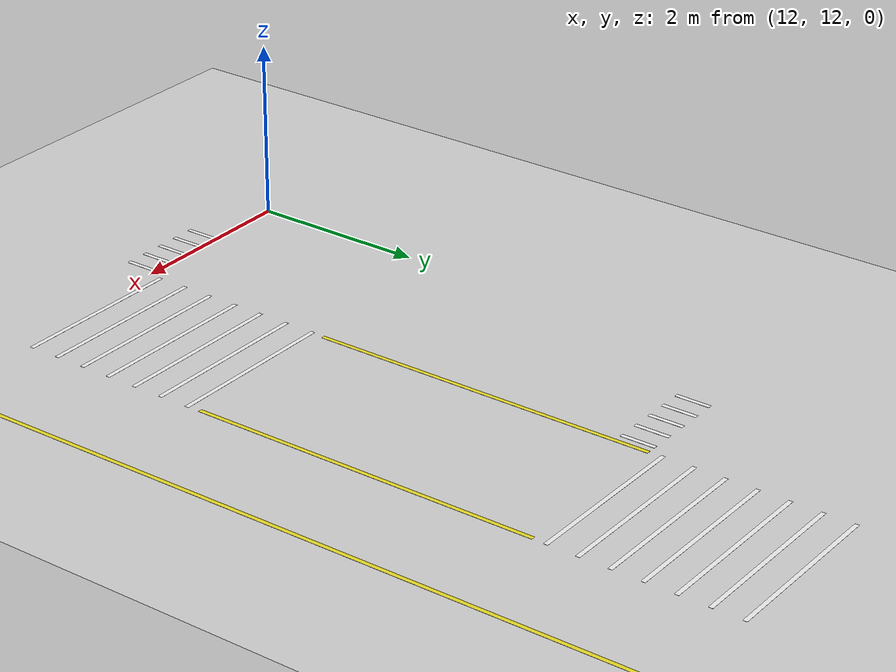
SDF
<sdf version="1.6">
 <world name="default">
  <model name="ground_plane">
   <static>1</static>
   <link name="link">
    <collision name="collision">
     <geometry><plane><normal>0 0 1</normal><size>100 100</size></plane></geometry>
     <surface><friction><ode><mu>100</mu><mu2>50</mu2></ode></friction></surface>
    </collision>
    <visual name="visual">
     <cast_shadows>0</cast_shadows>
     <geometry><plane><normal>0 0 1</normal><size>100 100</size></plane></geometry>
     <material>
      <script><uri>file://media/materials/scripts/gazebo.material</uri><name>Gazebo/Grey</name></script>
     </material>
    </visual>
   </link>
  </model>
  <model name="zebra_crossing_200cmx210cm_0">
   <link name="link_0">
    <inertial>
     <mass>1</mass>
     <inertia>
      <ixx>0.166667</ixx>
      <ixy>0</ixy>
      <ixz>0</ixz>
      <iyy>0.166667</iyy>
      <iyz>0</iyz>
      <izz>0.166667</izz>
     </inertia>
    </inertial>
    <visual name="ModelPreview_1::link_0::visual_6">
     <pose>-1.05 0 0 0 -0 0</pose>
     <geometry><box><size>0.05 2 0.001</size></box></geometry>
     <material>
      <lighting>1</lighting>
      <script><uri>file://media/materials/scripts/gazebo.material</uri><name>Gazebo/White</name></script>
     </material>
    </visual>
    <visual name="ModelPreview_1::link_0::visual_1">
     <pose>0.35 0 0 0 -0 0</pose>
     <geometry><box><size>0.05 2 0.001</size></box></geometry>
     <material>
      <lighting>1</lighting>
      <script><uri>file://media/materials/scripts/gazebo.material</uri><name>Gazebo/White</name></script>
     </material>
    </visual>
    <visual name="ModelPreview_1::link_0::visual_5">
     <pose>-0.7 0 0 0 -0 0</pose>
     <geometry><box><size>0.05 2 0.001</size></box></geometry>
     <material>
      <lighting>1</lighting>
      <script><uri>file://media/materials/scripts/gazebo.material</uri><name>Gazebo/White</name></script>
     </material>
    </visual>
    <visual name="ModelPreview_1::link_0::visual_3">
     <pose>1.05 0 0 0 -0 0</pose>
     <geometry><box><size>0.05 2 0.001</size></box></geometry>
     <material>
      <lighting>1</lighting>
      <script><uri>file://media/materials/scripts/gazebo.material</uri><name>Gazebo/White</name></script>
     </material>
    </visual>
    <visual name="ModelPreview_1::link_0::visual_2">
     <pose>0.7 0 0 0 -0 0</pose>
     <geometry><box><size>0.05 2 0.001</size></box></geometry>
     <material>
      <lighting>1</lighting>
      <script><uri>file://media/materials/scripts/gazebo.material</uri><name>Gazebo/White</name></script>
     </material>
    </visual>
    <visual name="visual">
     <geometry><box><size>0.05 2 0.001</size></box></geometry>
     <material>
      <lighting>1</lighting>
      <script><uri>file://media/materials/scripts/gazebo.material</uri><name>Gazebo/White</name></script>
     </material>
    </visual>
    <visual name="ModelPreview_1::link_0::visual_4">
     <pose>-0.35 0 0 0 -0 0</pose>
     <geometry><box><size>0.05 2 0.001</size></box></geometry>
     <material>
      <lighting>1</lighting>
      <script><uri>file://media/materials/scripts/gazebo.material</uri><name>Gazebo/White</name></script>
     </material>
    </visual>
    <collision name="collision_2">
     <pose>0.7 0 0 0 -0 0</pose>
     <geometry><box><size>0.05 2 1e-05</size></box></geometry>
     <surface>
      <friction>
       <ode><mu>1</mu><mu2>1</mu2><fdir1>0 0 0</fdir1><slip1>0</slip1><slip2>0</slip2></ode>
       <torsional>
        <coefficient>1</coefficient>
        <patch_radius>0</patch_radius>
        <surface_radius>0</surface_radius>
        <use_patch_radius>1</use_patch_radius>
        <ode><slip>0</slip></ode>
       </torsional>
      </friction>
      <bounce><restitution_coefficient>0</restitution_coefficient><threshold>1e+06</threshold></bounce>
      <contact>
       <collide_without_contact>0</collide_without_contact>
       <collide_without_contact_bitmask>1</collide_without_contact_bitmask>
       <collide_bitmask>1</collide_bitmask>
       <ode>
        <soft_cfm>0</soft_cfm>
        <soft_erp>0.2</soft_erp>
        <kp>1e+13</kp>
        <kd>1</kd>
        <max_vel>0.01</max_vel>
        <min_depth>0</min_depth>
       </ode>
       <bullet>
        <split_impulse>1</split_impulse>
        <split_impulse_penetration_threshold>-0.01</split_impulse_penetration_threshold>
        <soft_cfm>0</soft_cfm>
        <soft_erp>0.2</soft_erp>
        <kp>1e+13</kp>
        <kd>1</kd>
       </bullet>
      </contact>
     </surface>
    </collision>
    <collision name="collision_4">
     <pose>-0.35 0 0 0 -0 0</pose>
     <geometry><box><size>0.05 2 1e-05</size></box></geometry>
     <surface>
      <friction>
       <ode><mu>1</mu><mu2>1</mu2><fdir1>0 0 0</fdir1><slip1>0</slip1><slip2>0</slip2></ode>
       <torsional>
        <coefficient>1</coefficient>
        <patch_radius>0</patch_radius>
        <surface_radius>0</surface_radius>
        <use_patch_radius>1</use_patch_radius>
        <ode><slip>0</slip></ode>
       </torsional>
      </friction>
      <bounce><restitution_coefficient>0</restitution_coefficient><threshold>1e+06</threshold></bounce>
      <contact>
       <collide_without_contact>0</collide_without_contact>
       <collide_without_contact_bitmask>1</collide_without_contact_bitmask>
       <collide_bitmask>1</collide_bitmask>
       <ode>
        <soft_cfm>0</soft_cfm>
        <soft_erp>0.2</soft_erp>
        <kp>1e+13</kp>
        <kd>1</kd>
        <max_vel>0.01</max_vel>
        <min_depth>0</min_depth>
       </ode>
       <bullet>
        <split_impulse>1</split_impulse>
        <split_impulse_penetration_threshold>-0.01</split_impulse_penetration_threshold>
        <soft_cfm>0</soft_cfm>
        <soft_erp>0.2</soft_erp>
        <kp>1e+13</kp>
        <kd>1</kd>
       </bullet>
      </contact>
     </surface>
    </collision>
    <collision name="collision">
     <geometry><box><size>0.05 2 1e-05</size></box></geometry>
     <surface>
      <friction>
       <ode><mu>1</mu><mu2>1</mu2><fdir1>0 0 0</fdir1><slip1>0</slip1><slip2>0</slip2></ode>
       <torsional>
        <coefficient>1</coefficient>
        <patch_radius>0</patch_radius>
        <surface_radius>0</surface_radius>
        <use_patch_radius>1</use_patch_radius>
        <ode><slip>0</slip></ode>
       </torsional>
      </friction>
      <bounce><restitution_coefficient>0</restitution_coefficient><threshold>1e+06</threshold></bounce>
      <contact>
       <collide_without_contact>0</collide_without_contact>
       <collide_without_contact_bitmask>1</collide_without_contact_bitmask>
       <collide_bitmask>1</collide_bitmask>
       <ode>
        <soft_cfm>0</soft_cfm>
        <soft_erp>0.2</soft_erp>
        <kp>1e+13</kp>
        <kd>1</kd>
        <max_vel>0.01</max_vel>
        <min_depth>0</min_depth>
       </ode>
       <bullet>
        <split_impulse>1</split_impulse>
        <split_impulse_penetration_threshold>-0.01</split_impulse_penetration_threshold>
        <soft_cfm>0</soft_cfm>
        <soft_erp>0.2</soft_erp>
        <kp>1e+13</kp>
        <kd>1</kd>
       </bullet>
      </contact>
     </surface>
    </collision>
    <collision name="collision_5">
     <pose>-0.7 0 0 0 -0 0</pose>
     <geometry><box><size>0.05 2 1e-05</size></box></geometry>
     <surface>
      <friction>
       <ode><mu>1</mu><mu2>1</mu2><fdir1>0 0 0</fdir1><slip1>0</slip1><slip2>0</slip2></ode>
       <torsional>
        <coefficient>1</coefficient>
        <patch_radius>0</patch_radius>
        <surface_radius>0</surface_radius>
        <use_patch_radius>1</use_patch_radius>
        <ode><slip>0</slip></ode>
       </torsional>
      </friction>
      <bounce><restitution_coefficient>0</restitution_coefficient><threshold>1e+06</threshold></bounce>
      <contact>
       <collide_without_contact>0</collide_without_contact>
       <collide_without_contact_bitmask>1</collide_without_contact_bitmask>
       <collide_bitmask>1</collide_bitmask>
       <ode>
        <soft_cfm>0</soft_cfm>
        <soft_erp>0.2</soft_erp>
        <kp>1e+13</kp>
        <kd>1</kd>
        <max_vel>0.01</max_vel>
        <min_depth>0</min_depth>
       </ode>
       <bullet>
        <split_impulse>1</split_impulse>
        <split_impulse_penetration_threshold>-0.01</split_impulse_penetration_threshold>
        <soft_cfm>0</soft_cfm>
        <soft_erp>0.2</soft_erp>
        <kp>1e+13</kp>
        <kd>1</kd>
       </bullet>
      </contact>
     </surface>
    </collision>
    <collision name="collision_1">
     <pose>0.35 0 0 0 -0 0</pose>
     <geometry><box><size>0.05 2 1e-05</size></box></geometry>
     <surface>
      <friction>
       <ode><mu>1</mu><mu2>1</mu2><fdir1>0 0 0</fdir1><slip1>0</slip1><slip2>0</slip2></ode>
       <torsional>
        <coefficient>1</coefficient>
        <patch_radius>0</patch_radius>
        <surface_radius>0</surface_radius>
        <use_patch_radius>1</use_patch_radius>
        <ode><slip>0</slip></ode>
       </torsional>
      </friction>
      <bounce><restitution_coefficient>0</restitution_coefficient><threshold>1e+06</threshold></bounce>
      <contact>
       <collide_without_contact>0</collide_without_contact>
       <collide_without_contact_bitmask>1</collide_without_contact_bitmask>
       <collide_bitmask>1</collide_bitmask>
       <ode>
        <soft_cfm>0</soft_cfm>
        <soft_erp>0.2</soft_erp>
        <kp>1e+13</kp>
        <kd>1</kd>
        <max_vel>0.01</max_vel>
        <min_depth>0</min_depth>
       </ode>
       <bullet>
        <split_impulse>1</split_impulse>
        <split_impulse_penetration_threshold>-0.01</split_impulse_penetration_threshold>
        <soft_cfm>0</soft_cfm>
        <soft_erp>0.2</soft_erp>
        <kp>1e+13</kp>
        <kd>1</kd>
       </bullet>
      </contact>
     </surface>
    </collision>
    <collision name="collision_3">
     <pose>1.05 0 0 0 -0 0</pose>
     <geometry><box><size>0.05 2 1e-05</size></box></geometry>
     <surface>
      <friction>
       <ode><mu>1</mu><mu2>1</mu2><fdir1>0 0 0</fdir1><slip1>0</slip1><slip2>0</slip2></ode>
       <torsional>
        <coefficient>1</coefficient>
        <patch_radius>0</patch_radius>
        <surface_radius>0</surface_radius>
        <use_patch_radius>1</use_patch_radius>
        <ode><slip>0</slip></ode>
       </torsional>
      </friction>
      <bounce><restitution_coefficient>0</restitution_coefficient><threshold>1e+06</threshold></bounce>
      <contact>
       <collide_without_contact>0</collide_without_contact>
       <collide_without_contact_bitmask>1</collide_without_contact_bitmask>
       <collide_bitmask>1</collide_bitmask>
       <ode>
        <soft_cfm>0</soft_cfm>
        <soft_erp>0.2</soft_erp>
        <kp>1e+13</kp>
        <kd>1</kd>
        <max_vel>0.01</max_vel>
        <min_depth>0</min_depth>
       </ode>
       <bullet>
        <split_impulse>1</split_impulse>
        <split_impulse_penetration_threshold>-0.01</split_impulse_penetration_threshold>
        <soft_cfm>0</soft_cfm>
        <soft_erp>0.2</soft_erp>
        <kp>1e+13</kp>
        <kd>1</kd>
       </bullet>
      </contact>
     </surface>
    </collision>
    <collision name="collision_6">
     <pose>-1.05 0 0 0 -0 0</pose>
     <geometry><box><size>0.05 2 1e-05</size></box></geometry>
     <surface>
      <friction>
       <ode><mu>1</mu><mu2>1</mu2><fdir1>0 0 0</fdir1><slip1>0</slip1><slip2>0</slip2></ode>
       <torsional>
        <coefficient>1</coefficient>
        <patch_radius>0</patch_radius>
        <surface_radius>0</surface_radius>
        <use_patch_radius>1</use_patch_radius>
        <ode><slip>0</slip></ode>
       </torsional>
      </friction>
      <bounce><restitution_coefficient>0</restitution_coefficient><threshold>1e+06</threshold></bounce>
      <contact>
       <collide_without_contact>0</collide_without_contact>
       <collide_without_contact_bitmask>1</collide_without_contact_bitmask>
       <collide_bitmask>1</collide_bitmask>
       <ode>
        <soft_cfm>0</soft_cfm>
        <soft_erp>0.2</soft_erp>
        <kp>1e+13</kp>
        <kd>1</kd>
        <max_vel>0.01</max_vel>
        <min_depth>0</min_depth>
       </ode>
       <bullet>
        <split_impulse>1</split_impulse>
        <split_impulse_penetration_threshold>-0.01</split_impulse_penetration_threshold>
        <soft_cfm>0</soft_cfm>
        <soft_erp>0.2</soft_erp>
        <kp>1e+13</kp>
        <kd>1</kd>
       </bullet>
      </contact>
     </surface>
    </collision>
   </link>
   <static>1</static>
   <pose>15 13.2 0 0 -0 1.5708</pose>
  </model>
  <model name="zebro_crossing_40cmx120cm_0">
   <link name="link_1">
    <inertial>
     <mass>1</mass>
     <inertia>
      <ixx>0.166667</ixx>
      <ixy>0</ixy>
      <ixz>0</ixz>
      <iyy>0.166667</iyy>
      <iyz>0</iyz>
      <izz>0.166667</izz>
     </inertia>
    </inertial>
    <visual name="ModelPreview_3::link_1::visual_4">
     <pose>-0.5 0 0 0 -0 0</pose>
     <geometry><box><size>0.05 0.4 0.001</size></box></geometry>
     <material>
      <lighting>1</lighting>
      <script><uri>file://media/materials/scripts/gazebo.material</uri><name>Gazebo/White</name></script>
     </material>
    </visual>
    <visual name="ModelPreview_3::link_1::visual_1">
     <pose>0.25 0 0 0 -0 0</pose>
     <geometry><box><size>0.05 0.4 0.001</size></box></geometry>
     <material>
      <lighting>1</lighting>
      <script><uri>file://media/materials/scripts/gazebo.material</uri><name>Gazebo/White</name></script>
     </material>
    </visual>
    <visual name="ModelPreview_3::link_1::visual_2">
     <pose>0.5 0 0 0 -0 0</pose>
     <geometry><box><size>0.05 0.4 0.001</size></box></geometry>
     <material>
      <lighting>1</lighting>
      <script><uri>file://media/materials/scripts/gazebo.material</uri><name>Gazebo/White</name></script>
     </material>
    </visual>
    <visual name="visual">
     <geometry><box><size>0.05 0.4 0.001</size></box></geometry>
     <material>
      <lighting>1</lighting>
      <script><uri>file://media/materials/scripts/gazebo.material</uri><name>Gazebo/White</name></script>
     </material>
    </visual>
    <visual name="ModelPreview_3::link_1::visual_3">
     <pose>-0.25 0 0 0 -0 0</pose>
     <geometry><box><size>0.05 0.4 0.001</size></box></geometry>
     <material>
      <lighting>1</lighting>
      <script><uri>file://media/materials/scripts/gazebo.material</uri><name>Gazebo/White</name></script>
     </material>
    </visual>
    <collision name="collision_1">
     <pose>0.25 0 0 0 -0 0</pose>
     <geometry><box><size>0.05 0.4 1e-06</size></box></geometry>
     <surface>
      <friction>
       <ode><mu>1</mu><mu2>1</mu2><fdir1>0 0 0</fdir1><slip1>0</slip1><slip2>0</slip2></ode>
       <torsional>
        <coefficient>1</coefficient>
        <patch_radius>0</patch_radius>
        <surface_radius>0</surface_radius>
        <use_patch_radius>1</use_patch_radius>
        <ode><slip>0</slip></ode>
       </torsional>
      </friction>
      <bounce><restitution_coefficient>0</restitution_coefficient><threshold>1e+06</threshold></bounce>
      <contact>
       <collide_without_contact>0</collide_without_contact>
       <collide_without_contact_bitmask>1</collide_without_contact_bitmask>
       <collide_bitmask>1</collide_bitmask>
       <ode>
        <soft_cfm>0</soft_cfm>
        <soft_erp>0.2</soft_erp>
        <kp>1e+13</kp>
        <kd>1</kd>
        <max_vel>0.01</max_vel>
        <min_depth>0</min_depth>
       </ode>
       <bullet>
        <split_impulse>1</split_impulse>
        <split_impulse_penetration_threshold>-0.01</split_impulse_penetration_threshold>
        <soft_cfm>0</soft_cfm>
        <soft_erp>0.2</soft_erp>
        <kp>1e+13</kp>
        <kd>1</kd>
       </bullet>
      </contact>
     </surface>
    </collision>
    <collision name="collision_2">
     <pose>0.5 0 0 0 -0 0</pose>
     <geometry><box><size>0.05 0.4 1e-06</size></box></geometry>
     <surface>
      <friction>
       <ode><mu>1</mu><mu2>1</mu2><fdir1>0 0 0</fdir1><slip1>0</slip1><slip2>0</slip2></ode>
       <torsional>
        <coefficient>1</coefficient>
        <patch_radius>0</patch_radius>
        <surface_radius>0</surface_radius>
        <use_patch_radius>1</use_patch_radius>
        <ode><slip>0</slip></ode>
       </torsional>
      </friction>
      <bounce><restitution_coefficient>0</restitution_coefficient><threshold>1e+06</threshold></bounce>
      <contact>
       <collide_without_contact>0</collide_without_contact>
       <collide_without_contact_bitmask>1</collide_without_contact_bitmask>
       <collide_bitmask>1</collide_bitmask>
       <ode>
        <soft_cfm>0</soft_cfm>
        <soft_erp>0.2</soft_erp>
        <kp>1e+13</kp>
        <kd>1</kd>
        <max_vel>0.01</max_vel>
        <min_depth>0</min_depth>
       </ode>
       <bullet>
        <split_impulse>1</split_impulse>
        <split_impulse_penetration_threshold>-0.01</split_impulse_penetration_threshold>
        <soft_cfm>0</soft_cfm>
        <soft_erp>0.2</soft_erp>
        <kp>1e+13</kp>
        <kd>1</kd>
       </bullet>
      </contact>
     </surface>
    </collision>
    <collision name="collision_3">
     <pose>-0.25 0 0 0 -0 0</pose>
     <geometry><box><size>0.05 0.4 1e-06</size></box></geometry>
     <surface>
      <friction>
       <ode><mu>1</mu><mu2>1</mu2><fdir1>0 0 0</fdir1><slip1>0</slip1><slip2>0</slip2></ode>
       <torsional>
        <coefficient>1</coefficient>
        <patch_radius>0</patch_radius>
        <surface_radius>0</surface_radius>
        <use_patch_radius>1</use_patch_radius>
        <ode><slip>0</slip></ode>
       </torsional>
      </friction>
      <bounce><restitution_coefficient>0</restitution_coefficient><threshold>1e+06</threshold></bounce>
      <contact>
       <collide_without_contact>0</collide_without_contact>
       <collide_without_contact_bitmask>1</collide_without_contact_bitmask>
       <collide_bitmask>1</collide_bitmask>
       <ode>
        <soft_cfm>0</soft_cfm>
        <soft_erp>0.2</soft_erp>
        <kp>1e+13</kp>
        <kd>1</kd>
        <max_vel>0.01</max_vel>
        <min_depth>0</min_depth>
       </ode>
       <bullet>
        <split_impulse>1</split_impulse>
        <split_impulse_penetration_threshold>-0.01</split_impulse_penetration_threshold>
        <soft_cfm>0</soft_cfm>
        <soft_erp>0.2</soft_erp>
        <kp>1e+13</kp>
        <kd>1</kd>
       </bullet>
      </contact>
     </surface>
    </collision>
    <collision name="collision">
     <geometry><box><size>0.05 0.4 1e-06</size></box></geometry>
     <surface>
      <friction>
       <ode><mu>1</mu><mu2>1</mu2><fdir1>0 0 0</fdir1><slip1>0</slip1><slip2>0</slip2></ode>
       <torsional>
        <coefficient>1</coefficient>
        <patch_radius>0</patch_radius>
        <surface_radius>0</surface_radius>
        <use_patch_radius>1</use_patch_radius>
        <ode><slip>0</slip></ode>
       </torsional>
      </friction>
      <bounce><restitution_coefficient>0</restitution_coefficient><threshold>1e+06</threshold></bounce>
      <contact>
       <collide_without_contact>0</collide_without_contact>
       <collide_without_contact_bitmask>1</collide_without_contact_bitmask>
       <collide_bitmask>1</collide_bitmask>
       <ode>
        <soft_cfm>0</soft_cfm>
        <soft_erp>0.2</soft_erp>
        <kp>1e+13</kp>
        <kd>1</kd>
        <max_vel>0.01</max_vel>
        <min_depth>0</min_depth>
       </ode>
       <bullet>
        <split_impulse>1</split_impulse>
        <split_impulse_penetration_threshold>-0.01</split_impulse_penetration_threshold>
        <soft_cfm>0</soft_cfm>
        <soft_erp>0.2</soft_erp>
        <kp>1e+13</kp>
        <kd>1</kd>
       </bullet>
      </contact>
     </surface>
    </collision>
    <collision name="collision_4">
     <pose>-0.5 0 0 0 -0 0</pose>
     <geometry><box><size>0.05 0.4 1e-06</size></box></geometry>
     <surface>
      <friction>
       <ode><mu>1</mu><mu2>1</mu2><fdir1>0 0 0</fdir1><slip1>0</slip1><slip2>0</slip2></ode>
       <torsional>
        <coefficient>1</coefficient>
        <patch_radius>0</patch_radius>
        <surface_radius>0</surface_radius>
        <use_patch_radius>1</use_patch_radius>
        <ode><slip>0</slip></ode>
       </torsional>
      </friction>
      <bounce><restitution_coefficient>0</restitution_coefficient><threshold>1e+06</threshold></bounce>
      <contact>
       <collide_without_contact>0</collide_without_contact>
       <collide_without_contact_bitmask>1</collide_without_contact_bitmask>
       <collide_bitmask>1</collide_bitmask>
       <ode>
        <soft_cfm>0</soft_cfm>
        <soft_erp>0.2</soft_erp>
        <kp>1e+13</kp>
        <kd>1</kd>
        <max_vel>0.01</max_vel>
        <min_depth>0</min_depth>
       </ode>
       <bullet>
        <split_impulse>1</split_impulse>
        <split_impulse_penetration_threshold>-0.01</split_impulse_penetration_threshold>
        <soft_cfm>0</soft_cfm>
        <soft_erp>0.2</soft_erp>
        <kp>1e+13</kp>
        <kd>1</kd>
       </bullet>
      </contact>
     </surface>
    </collision>
   </link>
   <static>1</static>
   <pose>13.4 11.8 0 0 -0 0</pose>
  </model>
  <model name="line4m_2">
   <link name="link_3">
    <inertial>
     <mass>1</mass>
     <inertia>
      <ixx>0.166667</ixx>
      <ixy>0</ixy>
      <ixz>0</ixz>
      <iyy>0.166667</iyy>
      <iyz>0</iyz>
      <izz>0.166667</izz>
     </inertia>
    </inertial>
    <visual name="visual">
     <geometry><box><size>0.05 4 0.001</size></box></geometry>
     <material>
      <lighting>1</lighting>
      <script><uri>file://media/materials/scripts/gazebo.material</uri><name>Gazebo/Yellow</name></script>
     </material>
    </visual>
    <collision name="collision">
     <geometry><box><size>0.05 4 1e-06</size></box></geometry>
     <surface>
      <friction>
       <ode><mu>1</mu><mu2>1</mu2><fdir1>0 0 0</fdir1><slip1>0</slip1><slip2>0</slip2></ode>
       <torsional>
        <coefficient>1</coefficient>
        <patch_radius>0</patch_radius>
        <surface_radius>0</surface_radius>
        <use_patch_radius>1</use_patch_radius>
        <ode><slip>0</slip></ode>
       </torsional>
      </friction>
      <bounce><restitution_coefficient>0</restitution_coefficient><threshold>1e+06</threshold></bounce>
      <contact>
       <collide_without_contact>0</collide_without_contact>
       <collide_without_contact_bitmask>1</collide_without_contact_bitmask>
       <collide_bitmask>1</collide_bitmask>
       <ode>
        <soft_cfm>0</soft_cfm>
        <soft_erp>0.2</soft_erp>
        <kp>1e+13</kp>
        <kd>1</kd>
        <max_vel>0.01</max_vel>
        <min_depth>0</min_depth>
       </ode>
       <bullet>
        <split_impulse>1</split_impulse>
        <split_impulse_penetration_threshold>-0.01</split_impulse_penetration_threshold>
        <soft_cfm>0</soft_cfm>
        <soft_erp>0.2</soft_erp>
        <kp>1e+13</kp>
        <kd>1</kd>
       </bullet>
      </contact>
     </surface>
    </collision>
   </link>
   <static>1</static>
   <pose>15.975 16.4 0 0 -0 0</pose>
  </model>
  <model name="line4m_3">
   <link name="link_3">
    <inertial>
     <mass>1</mass>
     <inertia>
      <ixx>0.166667</ixx>
      <ixy>0</ixy>
      <ixz>0</ixz>
      <iyy>0.166667</iyy>
      <iyz>0</iyz>
      <izz>0.166667</izz>
     </inertia>
    </inertial>
    <visual name="visual">
     <geometry><box><size>0.05 4 0.001</size></box></geometry>
     <material>
      <lighting>1</lighting>
      <script><uri>file://media/materials/scripts/gazebo.material</uri><name>Gazebo/Yellow</name></script>
     </material>
    </visual>
    <collision name="collision">
     <geometry><box><size>0.05 4 1e-06</size></box></geometry>
     <surface>
      <friction>
       <ode><mu>1</mu><mu2>1</mu2><fdir1>0 0 0</fdir1><slip1>0</slip1><slip2>0</slip2></ode>
       <torsional>
        <coefficient>1</coefficient>
        <patch_radius>0</patch_radius>
        <surface_radius>0</surface_radius>
        <use_patch_radius>1</use_patch_radius>
        <ode><slip>0</slip></ode>
       </torsional>
      </friction>
      <bounce><restitution_coefficient>0</restitution_coefficient><threshold>1e+06</threshold></bounce>
      <contact>
       <collide_without_contact>0</collide_without_contact>
       <collide_without_contact_bitmask>1</collide_without_contact_bitmask>
       <collide_bitmask>1</collide_bitmask>
       <ode>
        <soft_cfm>0</soft_cfm>
        <soft_erp>0.2</soft_erp>
        <kp>1e+13</kp>
        <kd>1</kd>
        <max_vel>0.01</max_vel>
        <min_depth>0</min_depth>
       </ode>
       <bullet>
        <split_impulse>1</split_impulse>
        <split_impulse_penetration_threshold>-0.01</split_impulse_penetration_threshold>
        <soft_cfm>0</soft_cfm>
        <soft_erp>0.2</soft_erp>
        <kp>1e+13</kp>
        <kd>1</kd>
       </bullet>
      </contact>
     </surface>
    </collision>
   </link>
   <static>1</static>
   <pose>14.025 16.4 0 0 -0 0</pose>
  </model>
  <model name="zebra_crossing_200cmx210cm_1">
   <link name="link_0">
    <inertial>
     <mass>1</mass>
     <inertia>
      <ixx>0.166667</ixx>
      <ixy>0</ixy>
      <ixz>0</ixz>
      <iyy>0.166667</iyy>
      <iyz>0</iyz>
      <izz>0.166667</izz>
     </inertia>
    </inertial>
    <visual name="ModelPreview_1::link_0::visual_6">
     <pose>-1.05 0 0 0 -0 0</pose>
     <geometry><box><size>0.05 2 0.001</size></box></geometry>
     <material>
      <lighting>1</lighting>
      <script><uri>file://media/materials/scripts/gazebo.material</uri><name>Gazebo/White</name></script>
     </material>
    </visual>
    <visual name="ModelPreview_1::link_0::visual_1">
     <pose>0.35 0 0 0 -0 0</pose>
     <geometry><box><size>0.05 2 0.001</size></box></geometry>
     <material>
      <lighting>1</lighting>
      <script><uri>file://media/materials/scripts/gazebo.material</uri><name>Gazebo/White</name></script>
     </material>
    </visual>
    <visual name="ModelPreview_1::link_0::visual_5">
     <pose>-0.7 0 0 0 -0 0</pose>
     <geometry><box><size>0.05 2 0.001</size></box></geometry>
     <material>
      <lighting>1</lighting>
      <script><uri>file://media/materials/scripts/gazebo.material</uri><name>Gazebo/White</name></script>
     </material>
    </visual>
    <visual name="ModelPreview_1::link_0::visual_3">
     <pose>1.05 0 0 0 -0 0</pose>
     <geometry><box><size>0.05 2 0.001</size></box></geometry>
     <material>
      <lighting>1</lighting>
      <script><uri>file://media/materials/scripts/gazebo.material</uri><name>Gazebo/White</name></script>
     </material>
    </visual>
    <visual name="ModelPreview_1::link_0::visual_2">
     <pose>0.7 0 0 0 -0 0</pose>
     <geometry><box><size>0.05 2 0.001</size></box></geometry>
     <material>
      <lighting>1</lighting>
      <script><uri>file://media/materials/scripts/gazebo.material</uri><name>Gazebo/White</name></script>
     </material>
    </visual>
    <visual name="visual">
     <geometry><box><size>0.05 2 0.001</size></box></geometry>
     <material>
      <lighting>1</lighting>
      <script><uri>file://media/materials/scripts/gazebo.material</uri><name>Gazebo/White</name></script>
     </material>
    </visual>
    <visual name="ModelPreview_1::link_0::visual_4">
     <pose>-0.35 0 0 0 -0 0</pose>
     <geometry><box><size>0.05 2 0.001</size></box></geometry>
     <material>
      <lighting>1</lighting>
      <script><uri>file://media/materials/scripts/gazebo.material</uri><name>Gazebo/White</name></script>
     </material>
    </visual>
    <collision name="collision_2">
     <pose>0.7 0 0 0 -0 0</pose>
     <geometry><box><size>0.05 2 1e-05</size></box></geometry>
     <surface>
      <friction>
       <ode><mu>1</mu><mu2>1</mu2><fdir1>0 0 0</fdir1><slip1>0</slip1><slip2>0</slip2></ode>
       <torsional>
        <coefficient>1</coefficient>
        <patch_radius>0</patch_radius>
        <surface_radius>0</surface_radius>
        <use_patch_radius>1</use_patch_radius>
        <ode><slip>0</slip></ode>
       </torsional>
      </friction>
      <bounce><restitution_coefficient>0</restitution_coefficient><threshold>1e+06</threshold></bounce>
      <contact>
       <collide_without_contact>0</collide_without_contact>
       <collide_without_contact_bitmask>1</collide_without_contact_bitmask>
       <collide_bitmask>1</collide_bitmask>
       <ode>
        <soft_cfm>0</soft_cfm>
        <soft_erp>0.2</soft_erp>
        <kp>1e+13</kp>
        <kd>1</kd>
        <max_vel>0.01</max_vel>
        <min_depth>0</min_depth>
       </ode>
       <bullet>
        <split_impulse>1</split_impulse>
        <split_impulse_penetration_threshold>-0.01</split_impulse_penetration_threshold>
        <soft_cfm>0</soft_cfm>
        <soft_erp>0.2</soft_erp>
        <kp>1e+13</kp>
        <kd>1</kd>
       </bullet>
      </contact>
     </surface>
    </collision>
    <collision name="collision_4">
     <pose>-0.35 0 0 0 -0 0</pose>
     <geometry><box><size>0.05 2 1e-05</size></box></geometry>
     <surface>
      <friction>
       <ode><mu>1</mu><mu2>1</mu2><fdir1>0 0 0</fdir1><slip1>0</slip1><slip2>0</slip2></ode>
       <torsional>
        <coefficient>1</coefficient>
        <patch_radius>0</patch_radius>
        <surface_radius>0</surface_radius>
        <use_patch_radius>1</use_patch_radius>
        <ode><slip>0</slip></ode>
       </torsional>
      </friction>
      <bounce><restitution_coefficient>0</restitution_coefficient><threshold>1e+06</threshold></bounce>
      <contact>
       <collide_without_contact>0</collide_without_contact>
       <collide_without_contact_bitmask>1</collide_without_contact_bitmask>
       <collide_bitmask>1</collide_bitmask>
       <ode>
        <soft_cfm>0</soft_cfm>
        <soft_erp>0.2</soft_erp>
        <kp>1e+13</kp>
        <kd>1</kd>
        <max_vel>0.01</max_vel>
        <min_depth>0</min_depth>
       </ode>
       <bullet>
        <split_impulse>1</split_impulse>
        <split_impulse_penetration_threshold>-0.01</split_impulse_penetration_threshold>
        <soft_cfm>0</soft_cfm>
        <soft_erp>0.2</soft_erp>
        <kp>1e+13</kp>
        <kd>1</kd>
       </bullet>
      </contact>
     </surface>
    </collision>
    <collision name="collision">
     <geometry><box><size>0.05 2 1e-05</size></box></geometry>
     <surface>
      <friction>
       <ode><mu>1</mu><mu2>1</mu2><fdir1>0 0 0</fdir1><slip1>0</slip1><slip2>0</slip2></ode>
       <torsional>
        <coefficient>1</coefficient>
        <patch_radius>0</patch_radius>
        <surface_radius>0</surface_radius>
        <use_patch_radius>1</use_patch_radius>
        <ode><slip>0</slip></ode>
       </torsional>
      </friction>
      <bounce><restitution_coefficient>0</restitution_coefficient><threshold>1e+06</threshold></bounce>
      <contact>
       <collide_without_contact>0</collide_without_contact>
       <collide_without_contact_bitmask>1</collide_without_contact_bitmask>
       <collide_bitmask>1</collide_bitmask>
       <ode>
        <soft_cfm>0</soft_cfm>
        <soft_erp>0.2</soft_erp>
        <kp>1e+13</kp>
        <kd>1</kd>
        <max_vel>0.01</max_vel>
        <min_depth>0</min_depth>
       </ode>
       <bullet>
        <split_impulse>1</split_impulse>
        <split_impulse_penetration_threshold>-0.01</split_impulse_penetration_threshold>
        <soft_cfm>0</soft_cfm>
        <soft_erp>0.2</soft_erp>
        <kp>1e+13</kp>
        <kd>1</kd>
       </bullet>
      </contact>
     </surface>
    </collision>
    <collision name="collision_5">
     <pose>-0.7 0 0 0 -0 0</pose>
     <geometry><box><size>0.05 2 1e-05</size></box></geometry>
     <surface>
      <friction>
       <ode><mu>1</mu><mu2>1</mu2><fdir1>0 0 0</fdir1><slip1>0</slip1><slip2>0</slip2></ode>
       <torsional>
        <coefficient>1</coefficient>
        <patch_radius>0</patch_radius>
        <surface_radius>0</surface_radius>
        <use_patch_radius>1</use_patch_radius>
        <ode><slip>0</slip></ode>
       </torsional>
      </friction>
      <bounce><restitution_coefficient>0</restitution_coefficient><threshold>1e+06</threshold></bounce>
      <contact>
       <collide_without_contact>0</collide_without_contact>
       <collide_without_contact_bitmask>1</collide_without_contact_bitmask>
       <collide_bitmask>1</collide_bitmask>
       <ode>
        <soft_cfm>0</soft_cfm>
        <soft_erp>0.2</soft_erp>
        <kp>1e+13</kp>
        <kd>1</kd>
        <max_vel>0.01</max_vel>
        <min_depth>0</min_depth>
       </ode>
       <bullet>
        <split_impulse>1</split_impulse>
        <split_impulse_penetration_threshold>-0.01</split_impulse_penetration_threshold>
        <soft_cfm>0</soft_cfm>
        <soft_erp>0.2</soft_erp>
        <kp>1e+13</kp>
        <kd>1</kd>
       </bullet>
      </contact>
     </surface>
    </collision>
    <collision name="collision_1">
     <pose>0.35 0 0 0 -0 0</pose>
     <geometry><box><size>0.05 2 1e-05</size></box></geometry>
     <surface>
      <friction>
       <ode><mu>1</mu><mu2>1</mu2><fdir1>0 0 0</fdir1><slip1>0</slip1><slip2>0</slip2></ode>
       <torsional>
        <coefficient>1</coefficient>
        <patch_radius>0</patch_radius>
        <surface_radius>0</surface_radius>
        <use_patch_radius>1</use_patch_radius>
        <ode><slip>0</slip></ode>
       </torsional>
      </friction>
      <bounce><restitution_coefficient>0</restitution_coefficient><threshold>1e+06</threshold></bounce>
      <contact>
       <collide_without_contact>0</collide_without_contact>
       <collide_without_contact_bitmask>1</collide_without_contact_bitmask>
       <collide_bitmask>1</collide_bitmask>
       <ode>
        <soft_cfm>0</soft_cfm>
        <soft_erp>0.2</soft_erp>
        <kp>1e+13</kp>
        <kd>1</kd>
        <max_vel>0.01</max_vel>
        <min_depth>0</min_depth>
       </ode>
       <bullet>
        <split_impulse>1</split_impulse>
        <split_impulse_penetration_threshold>-0.01</split_impulse_penetration_threshold>
        <soft_cfm>0</soft_cfm>
        <soft_erp>0.2</soft_erp>
        <kp>1e+13</kp>
        <kd>1</kd>
       </bullet>
      </contact>
     </surface>
    </collision>
    <collision name="collision_3">
     <pose>1.05 0 0 0 -0 0</pose>
     <geometry><box><size>0.05 2 1e-05</size></box></geometry>
     <surface>
      <friction>
       <ode><mu>1</mu><mu2>1</mu2><fdir1>0 0 0</fdir1><slip1>0</slip1><slip2>0</slip2></ode>
       <torsional>
        <coefficient>1</coefficient>
        <patch_radius>0</patch_radius>
        <surface_radius>0</surface_radius>
        <use_patch_radius>1</use_patch_radius>
        <ode><slip>0</slip></ode>
       </torsional>
      </friction>
      <bounce><restitution_coefficient>0</restitution_coefficient><threshold>1e+06</threshold></bounce>
      <contact>
       <collide_without_contact>0</collide_without_contact>
       <collide_without_contact_bitmask>1</collide_without_contact_bitmask>
       <collide_bitmask>1</collide_bitmask>
       <ode>
        <soft_cfm>0</soft_cfm>
        <soft_erp>0.2</soft_erp>
        <kp>1e+13</kp>
        <kd>1</kd>
        <max_vel>0.01</max_vel>
        <min_depth>0</min_depth>
       </ode>
       <bullet>
        <split_impulse>1</split_impulse>
        <split_impulse_penetration_threshold>-0.01</split_impulse_penetration_threshold>
        <soft_cfm>0</soft_cfm>
        <soft_erp>0.2</soft_erp>
        <kp>1e+13</kp>
        <kd>1</kd>
       </bullet>
      </contact>
     </surface>
    </collision>
    <collision name="collision_6">
     <pose>-1.05 0 0 0 -0 0</pose>
     <geometry><box><size>0.05 2 1e-05</size></box></geometry>
     <surface>
      <friction>
       <ode><mu>1</mu><mu2>1</mu2><fdir1>0 0 0</fdir1><slip1>0</slip1><slip2>0</slip2></ode>
       <torsional>
        <coefficient>1</coefficient>
        <patch_radius>0</patch_radius>
        <surface_radius>0</surface_radius>
        <use_patch_radius>1</use_patch_radius>
        <ode><slip>0</slip></ode>
       </torsional>
      </friction>
      <bounce><restitution_coefficient>0</restitution_coefficient><threshold>1e+06</threshold></bounce>
      <contact>
       <collide_without_contact>0</collide_without_contact>
       <collide_without_contact_bitmask>1</collide_without_contact_bitmask>
       <collide_bitmask>1</collide_bitmask>
       <ode>
        <soft_cfm>0</soft_cfm>
        <soft_erp>0.2</soft_erp>
        <kp>1e+13</kp>
        <kd>1</kd>
        <max_vel>0.01</max_vel>
        <min_depth>0</min_depth>
       </ode>
       <bullet>
        <split_impulse>1</split_impulse>
        <split_impulse_penetration_threshold>-0.01</split_impulse_penetration_threshold>
        <soft_cfm>0</soft_cfm>
        <soft_erp>0.2</soft_erp>
        <kp>1e+13</kp>
        <kd>1</kd>
       </bullet>
      </contact>
     </surface>
    </collision>
   </link>
   <static>1</static>
   <pose>15 19.6 0 0 -0 1.5708</pose>
  </model>
  <model name="zebro_crossing_40cmx120cm_2">
   <link name="link_1">
    <inertial>
     <mass>1</mass>
     <inertia>
      <ixx>0.166667</ixx>
      <ixy>0</ixy>
      <ixz>0</ixz>
      <iyy>0.166667</iyy>
      <iyz>0</iyz>
      <izz>0.166667</izz>
     </inertia>
    </inertial>
    <visual name="ModelPreview_3::link_1::visual_4">
     <pose>-0.5 0 0 0 -0 0</pose>
     <geometry><box><size>0.05 0.4 0.001</size></box></geometry>
     <material>
      <lighting>1</lighting>
      <script><uri>file://media/materials/scripts/gazebo.material</uri><name>Gazebo/White</name></script>
     </material>
    </visual>
    <visual name="ModelPreview_3::link_1::visual_1">
     <pose>0.25 0 0 0 -0 0</pose>
     <geometry><box><size>0.05 0.4 0.001</size></box></geometry>
     <material>
      <lighting>1</lighting>
      <script><uri>file://media/materials/scripts/gazebo.material</uri><name>Gazebo/White</name></script>
     </material>
    </visual>
    <visual name="ModelPreview_3::link_1::visual_2">
     <pose>0.5 0 0 0 -0 0</pose>
     <geometry><box><size>0.05 0.4 0.001</size></box></geometry>
     <material>
      <lighting>1</lighting>
      <script><uri>file://media/materials/scripts/gazebo.material</uri><name>Gazebo/White</name></script>
     </material>
    </visual>
    <visual name="visual">
     <geometry><box><size>0.05 0.4 0.001</size></box></geometry>
     <material>
      <lighting>1</lighting>
      <script><uri>file://media/materials/scripts/gazebo.material</uri><name>Gazebo/White</name></script>
     </material>
    </visual>
    <visual name="ModelPreview_3::link_1::visual_3">
     <pose>-0.25 0 0 0 -0 0</pose>
     <geometry><box><size>0.05 0.4 0.001</size></box></geometry>
     <material>
      <lighting>1</lighting>
      <script><uri>file://media/materials/scripts/gazebo.material</uri><name>Gazebo/White</name></script>
     </material>
    </visual>
    <collision name="collision_1">
     <pose>0.25 0 0 0 -0 0</pose>
     <geometry><box><size>0.05 0.4 1e-06</size></box></geometry>
     <surface>
      <friction>
       <ode><mu>1</mu><mu2>1</mu2><fdir1>0 0 0</fdir1><slip1>0</slip1><slip2>0</slip2></ode>
       <torsional>
        <coefficient>1</coefficient>
        <patch_radius>0</patch_radius>
        <surface_radius>0</surface_radius>
        <use_patch_radius>1</use_patch_radius>
        <ode><slip>0</slip></ode>
       </torsional>
      </friction>
      <bounce><restitution_coefficient>0</restitution_coefficient><threshold>1e+06</threshold></bounce>
      <contact>
       <collide_without_contact>0</collide_without_contact>
       <collide_without_contact_bitmask>1</collide_without_contact_bitmask>
       <collide_bitmask>1</collide_bitmask>
       <ode>
        <soft_cfm>0</soft_cfm>
        <soft_erp>0.2</soft_erp>
        <kp>1e+13</kp>
        <kd>1</kd>
        <max_vel>0.01</max_vel>
        <min_depth>0</min_depth>
       </ode>
       <bullet>
        <split_impulse>1</split_impulse>
        <split_impulse_penetration_threshold>-0.01</split_impulse_penetration_threshold>
        <soft_cfm>0</soft_cfm>
        <soft_erp>0.2</soft_erp>
        <kp>1e+13</kp>
        <kd>1</kd>
       </bullet>
      </contact>
     </surface>
    </collision>
    <collision name="collision_2">
     <pose>0.5 0 0 0 -0 0</pose>
     <geometry><box><size>0.05 0.4 1e-06</size></box></geometry>
     <surface>
      <friction>
       <ode><mu>1</mu><mu2>1</mu2><fdir1>0 0 0</fdir1><slip1>0</slip1><slip2>0</slip2></ode>
       <torsional>
        <coefficient>1</coefficient>
        <patch_radius>0</patch_radius>
        <surface_radius>0</surface_radius>
        <use_patch_radius>1</use_patch_radius>
        <ode><slip>0</slip></ode>
       </torsional>
      </friction>
      <bounce><restitution_coefficient>0</restitution_coefficient><threshold>1e+06</threshold></bounce>
      <contact>
       <collide_without_contact>0</collide_without_contact>
       <collide_without_contact_bitmask>1</collide_without_contact_bitmask>
       <collide_bitmask>1</collide_bitmask>
       <ode>
        <soft_cfm>0</soft_cfm>
        <soft_erp>0.2</soft_erp>
        <kp>1e+13</kp>
        <kd>1</kd>
        <max_vel>0.01</max_vel>
        <min_depth>0</min_depth>
       </ode>
       <bullet>
        <split_impulse>1</split_impulse>
        <split_impulse_penetration_threshold>-0.01</split_impulse_penetration_threshold>
        <soft_cfm>0</soft_cfm>
        <soft_erp>0.2</soft_erp>
        <kp>1e+13</kp>
        <kd>1</kd>
       </bullet>
      </contact>
     </surface>
    </collision>
    <collision name="collision_3">
     <pose>-0.25 0 0 0 -0 0</pose>
     <geometry><box><size>0.05 0.4 1e-06</size></box></geometry>
     <surface>
      <friction>
       <ode><mu>1</mu><mu2>1</mu2><fdir1>0 0 0</fdir1><slip1>0</slip1><slip2>0</slip2></ode>
       <torsional>
        <coefficient>1</coefficient>
        <patch_radius>0</patch_radius>
        <surface_radius>0</surface_radius>
        <use_patch_radius>1</use_patch_radius>
        <ode><slip>0</slip></ode>
       </torsional>
      </friction>
      <bounce><restitution_coefficient>0</restitution_coefficient><threshold>1e+06</threshold></bounce>
      <contact>
       <collide_without_contact>0</collide_without_contact>
       <collide_without_contact_bitmask>1</collide_without_contact_bitmask>
       <collide_bitmask>1</collide_bitmask>
       <ode>
        <soft_cfm>0</soft_cfm>
        <soft_erp>0.2</soft_erp>
        <kp>1e+13</kp>
        <kd>1</kd>
        <max_vel>0.01</max_vel>
        <min_depth>0</min_depth>
       </ode>
       <bullet>
        <split_impulse>1</split_impulse>
        <split_impulse_penetration_threshold>-0.01</split_impulse_penetration_threshold>
        <soft_cfm>0</soft_cfm>
        <soft_erp>0.2</soft_erp>
        <kp>1e+13</kp>
        <kd>1</kd>
       </bullet>
      </contact>
     </surface>
    </collision>
    <collision name="collision">
     <geometry><box><size>0.05 0.4 1e-06</size></box></geometry>
     <surface>
      <friction>
       <ode><mu>1</mu><mu2>1</mu2><fdir1>0 0 0</fdir1><slip1>0</slip1><slip2>0</slip2></ode>
       <torsional>
        <coefficient>1</coefficient>
        <patch_radius>0</patch_radius>
        <surface_radius>0</surface_radius>
        <use_patch_radius>1</use_patch_radius>
        <ode><slip>0</slip></ode>
       </torsional>
      </friction>
      <bounce><restitution_coefficient>0</restitution_coefficient><threshold>1e+06</threshold></bounce>
      <contact>
       <collide_without_contact>0</collide_without_contact>
       <collide_without_contact_bitmask>1</collide_without_contact_bitmask>
       <collide_bitmask>1</collide_bitmask>
       <ode>
        <soft_cfm>0</soft_cfm>
        <soft_erp>0.2</soft_erp>
        <kp>1e+13</kp>
        <kd>1</kd>
        <max_vel>0.01</max_vel>
        <min_depth>0</min_depth>
       </ode>
       <bullet>
        <split_impulse>1</split_impulse>
        <split_impulse_penetration_threshold>-0.01</split_impulse_penetration_threshold>
        <soft_cfm>0</soft_cfm>
        <soft_erp>0.2</soft_erp>
        <kp>1e+13</kp>
        <kd>1</kd>
       </bullet>
      </contact>
     </surface>
    </collision>
    <collision name="collision_4">
     <pose>-0.5 0 0 0 -0 0</pose>
     <geometry><box><size>0.05 0.4 1e-06</size></box></geometry>
     <surface>
      <friction>
       <ode><mu>1</mu><mu2>1</mu2><fdir1>0 0 0</fdir1><slip1>0</slip1><slip2>0</slip2></ode>
       <torsional>
        <coefficient>1</coefficient>
        <patch_radius>0</patch_radius>
        <surface_radius>0</surface_radius>
        <use_patch_radius>1</use_patch_radius>
        <ode><slip>0</slip></ode>
       </torsional>
      </friction>
      <bounce><restitution_coefficient>0</restitution_coefficient><threshold>1e+06</threshold></bounce>
      <contact>
       <collide_without_contact>0</collide_without_contact>
       <collide_without_contact_bitmask>1</collide_without_contact_bitmask>
       <collide_bitmask>1</collide_bitmask>
       <ode>
        <soft_cfm>0</soft_cfm>
        <soft_erp>0.2</soft_erp>
        <kp>1e+13</kp>
        <kd>1</kd>
        <max_vel>0.01</max_vel>
        <min_depth>0</min_depth>
       </ode>
       <bullet>
        <split_impulse>1</split_impulse>
        <split_impulse_penetration_threshold>-0.01</split_impulse_penetration_threshold>
        <soft_cfm>0</soft_cfm>
        <soft_erp>0.2</soft_erp>
        <kp>1e+13</kp>
        <kd>1</kd>
       </bullet>
      </contact>
     </surface>
    </collision>
   </link>
   <static>1</static>
   <pose>13.4036 18.2007 0 0 -0 0</pose>
  </model>
  <model name="line2160cm_0">
   <link name="link_4">
    <inertial>
     <mass>1</mass>
     <inertia>
      <ixx>0.166667</ixx>
      <ixy>0</ixy>
      <ixz>0</ixz>
      <iyy>0.166667</iyy>
      <iyz>0</iyz>
      <izz>0.166667</izz>
     </inertia>
    </inertial>
    <visual name="visual">
     <geometry><box><size>0.05 21.6 0.001</size></box></geometry>
     <material>
      <lighting>1</lighting>
      <script><uri>file://media/materials/scripts/gazebo.material</uri><name>Gazebo/Yellow</name></script>
     </material>
    </visual>
    <collision name="collision">
     <geometry><box><size>0.05 21.6 1e-05</size></box></geometry>
     <surface>
      <friction>
       <ode><mu>1</mu><mu2>1</mu2><fdir1>0 0 0</fdir1><slip1>0</slip1><slip2>0</slip2></ode>
       <torsional>
        <coefficient>1</coefficient>
        <patch_radius>0</patch_radius>
        <surface_radius>0</surface_radius>
        <use_patch_radius>1</use_patch_radius>
        <ode><slip>0</slip></ode>
       </torsional>
      </friction>
      <bounce><restitution_coefficient>0</restitution_coefficient><threshold>1e+06</threshold></bounce>
      <contact>
       <collide_without_contact>0</collide_without_contact>
       <collide_without_contact_bitmask>1</collide_without_contact_bitmask>
       <collide_bitmask>1</collide_bitmask>
       <ode>
        <soft_cfm>0</soft_cfm>
        <soft_erp>0.2</soft_erp>
        <kp>1e+13</kp>
        <kd>1</kd>
        <max_vel>0.01</max_vel>
        <min_depth>0</min_depth>
       </ode>
       <bullet>
        <split_impulse>1</split_impulse>
        <split_impulse_penetration_threshold>-0.01</split_impulse_penetration_threshold>
        <soft_cfm>0</soft_cfm>
        <soft_erp>0.2</soft_erp>
        <kp>1e+13</kp>
        <kd>1</kd>
       </bullet>
      </contact>
     </surface>
    </collision>
   </link>
   <static>1</static>
   <pose>17.225 16.4 0 0 -0 0</pose>
  </model>
 </world>
</sdf>
